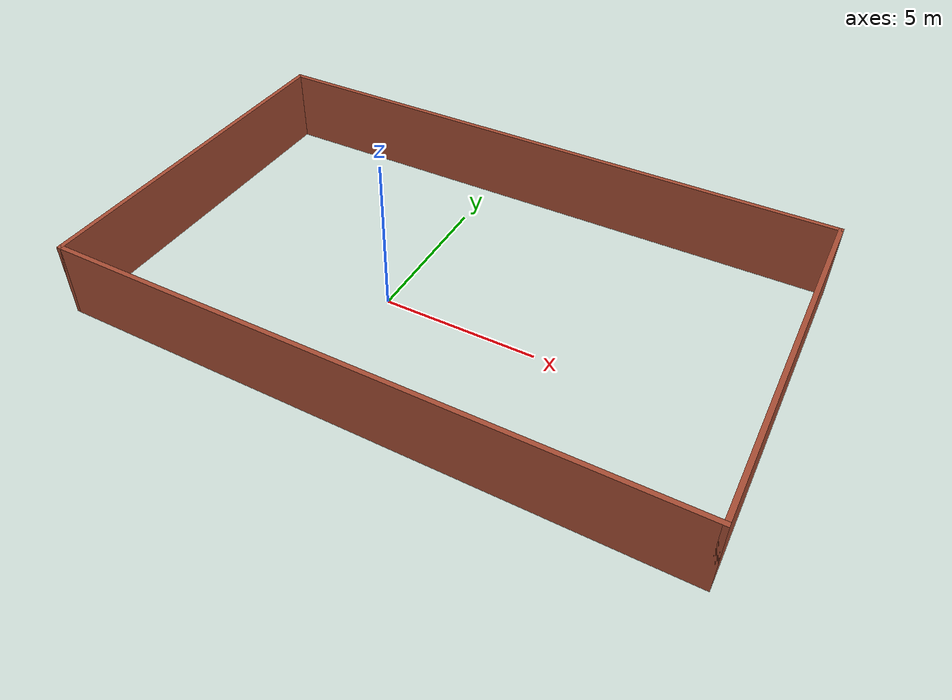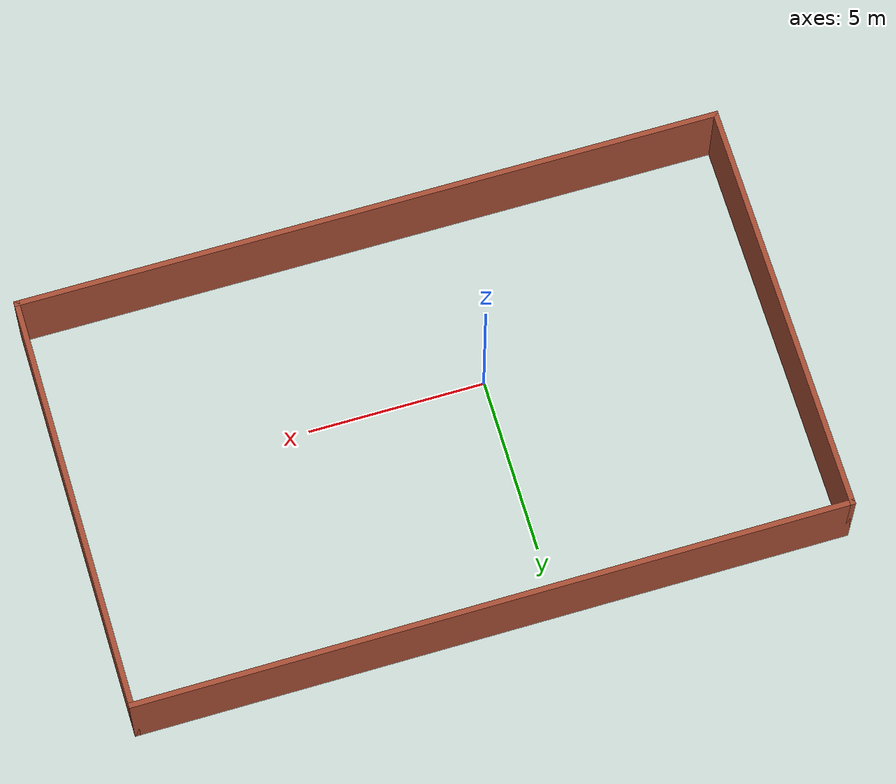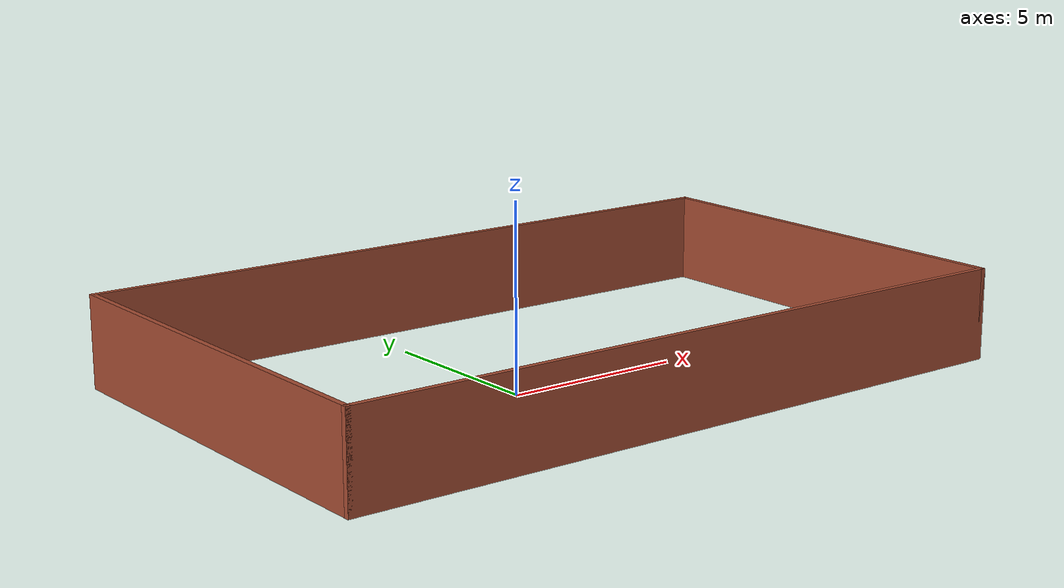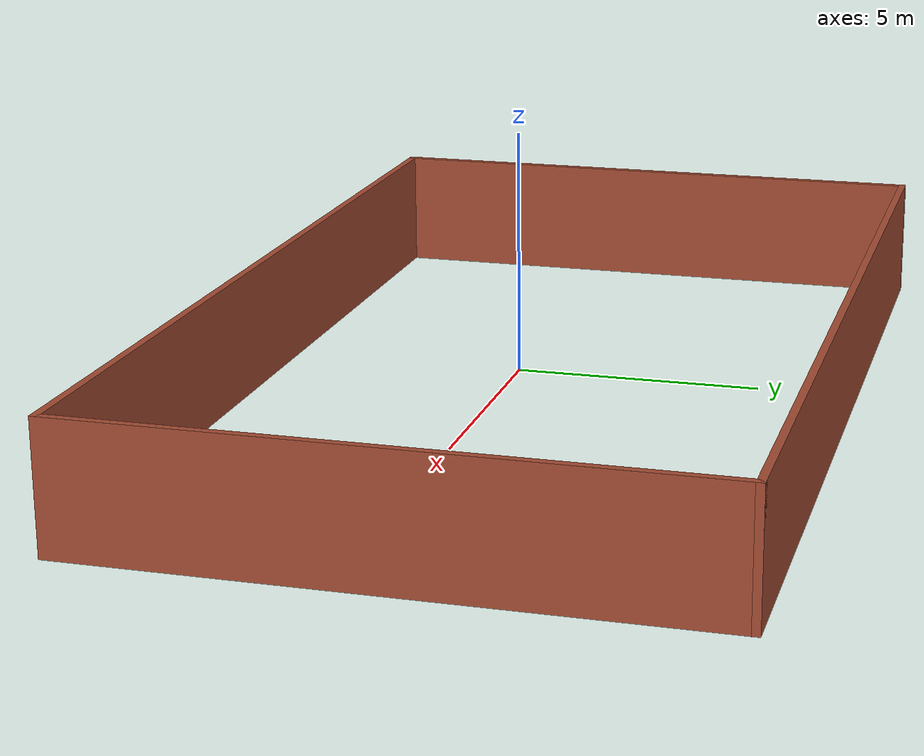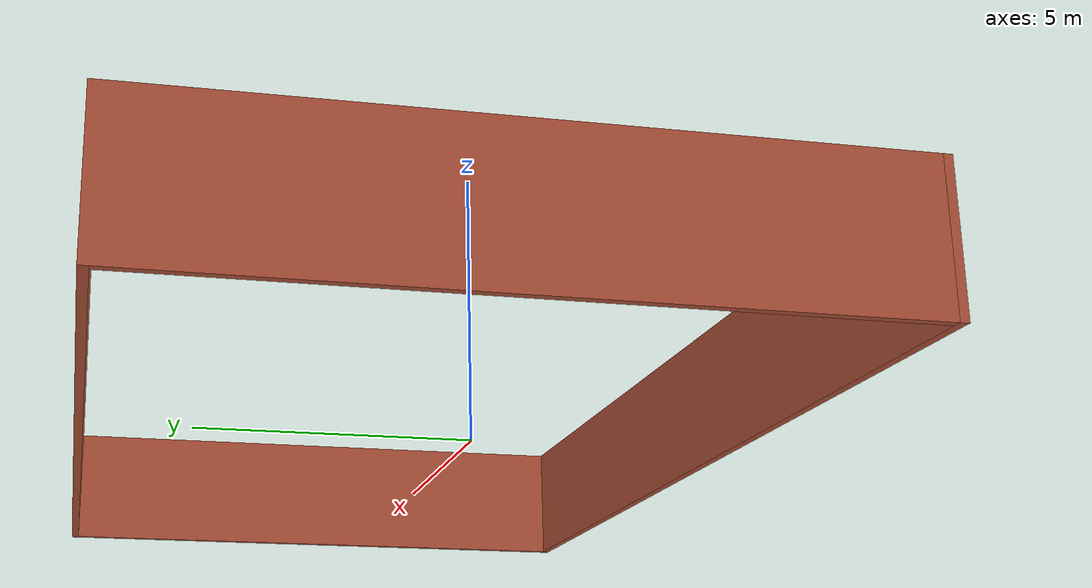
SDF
<?xml version='1.0'?>
<sdf version='1.7'>
  <model name='Untitled1'>
    <pose>1.81825 1.0199 0 0 -0 0</pose>
    <link name='Wall_1'>
      <collision name='Wall_1_Collision'>
        <geometry>
          <box>
            <size>20 0.15 2.5</size>
          </box>
        </geometry>
        <pose>0 0 1.25 0 -0 0</pose>
      </collision>
      <visual name='Wall_1_Visual'>
        <pose>0 0 1.25 0 -0 0</pose>
        <geometry>
          <box>
            <size>20 0.15 2.5</size>
          </box>
        </geometry>
        <material>
          <script>
            <uri>file://media/materials/scripts/gazebo.material</uri>
            <name>Gazebo/Bricks</name>
          </script>
          <ambient>1 1 1 1</ambient>
        </material>
        <meta>
          <layer>0</layer>
        </meta>
      </visual>
      <pose>-0 -5.925 0 0 -0 0</pose>
    </link>
    <link name='Wall_3'>
      <collision name='Wall_3_Collision'>
        <geometry>
          <box>
            <size>12 0.15 2.5</size>
          </box>
        </geometry>
        <pose>0 0 1.25 0 -0 0</pose>
      </collision>
      <visual name='Wall_3_Visual'>
        <pose>0 0 1.25 0 -0 0</pose>
        <geometry>
          <box>
            <size>12 0.15 2.5</size>
          </box>
        </geometry>
        <material>
          <script>
            <uri>file://media/materials/scripts/gazebo.material</uri>
            <name>Gazebo/Bricks</name>
          </script>
          <ambient>1 1 1 1</ambient>
        </material>
        <meta>
          <layer>0</layer>
        </meta>
      </visual>
      <pose>9.925 0 0 0 -0 1.5708</pose>
    </link>
    <link name='Wall_5'>
      <collision name='Wall_5_Collision'>
        <geometry>
          <box>
            <size>12 0.15 2.5</size>
          </box>
        </geometry>
        <pose>0 0 1.25 0 -0 0</pose>
      </collision>
      <visual name='Wall_5_Visual'>
        <pose>0 0 1.25 0 -0 0</pose>
        <geometry>
          <box>
            <size>12 0.15 2.5</size>
          </box>
        </geometry>
        <material>
          <script>
            <uri>file://media/materials/scripts/gazebo.material</uri>
            <name>Gazebo/Bricks</name>
          </script>
          <ambient>1 1 1 1</ambient>
        </material>
        <meta>
          <layer>0</layer>
        </meta>
      </visual>
      <pose>-9.925 0 0 0 -0 1.5708</pose>
    </link>
    <link name='Wall_6'>
      <collision name='Wall_6_Collision'>
        <geometry>
          <box>
            <size>20 0.15 2.5</size>
          </box>
        </geometry>
        <pose>0 0 1.25 0 -0 0</pose>
      </collision>
      <visual name='Wall_6_Visual'>
        <pose>0 0 1.25 0 -0 0</pose>
        <geometry>
          <box>
            <size>20 0.15 2.5</size>
          </box>
        </geometry>
        <material>
          <script>
            <uri>file://media/materials/scripts/gazebo.material</uri>
            <name>Gazebo/Bricks</name>
          </script>
          <ambient>1 1 1 1</ambient>
        </material>
        <meta>
          <layer>0</layer>
        </meta>
      </visual>
      <pose>-0 5.925 0 0 -0 0</pose>
    </link>
    <static>1</static>
  </model>
</sdf>
